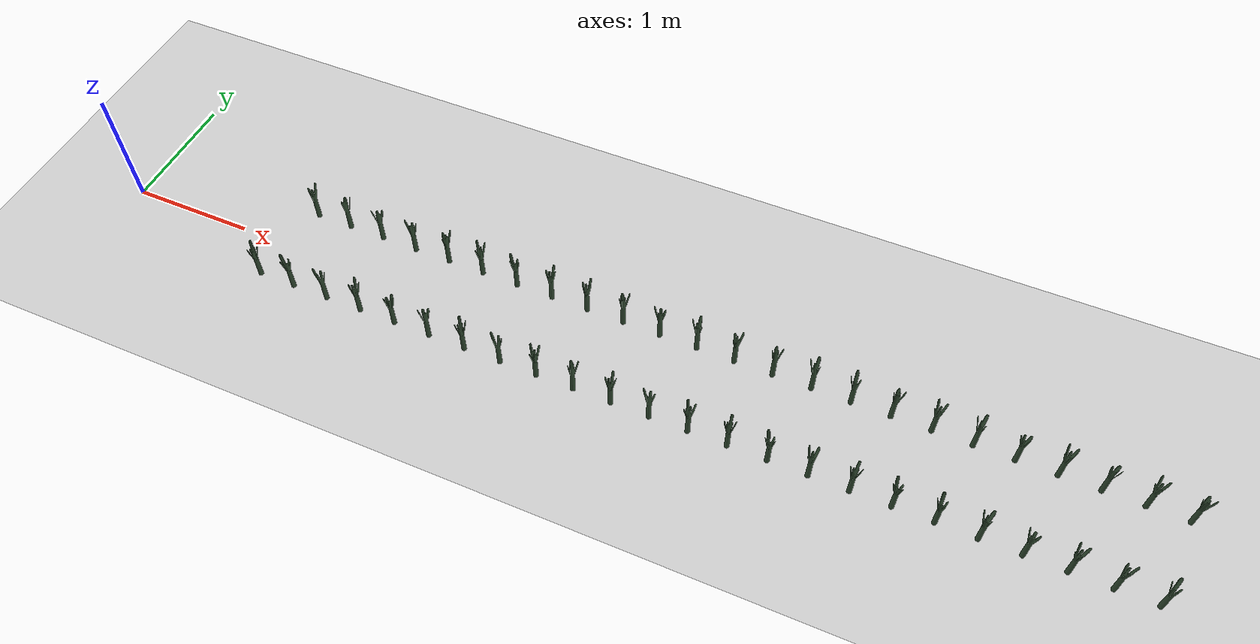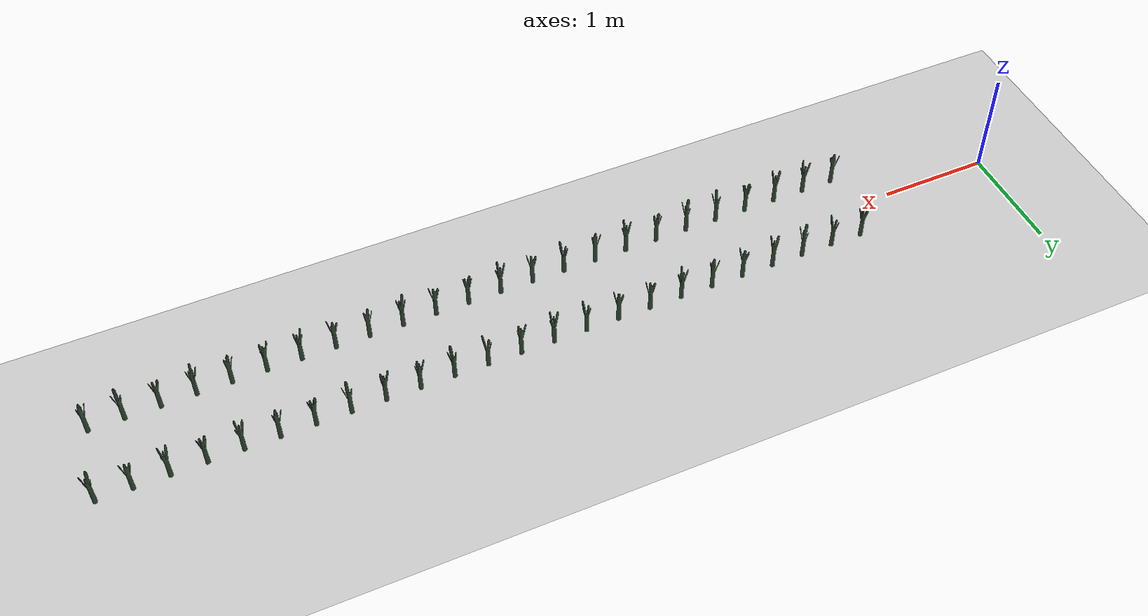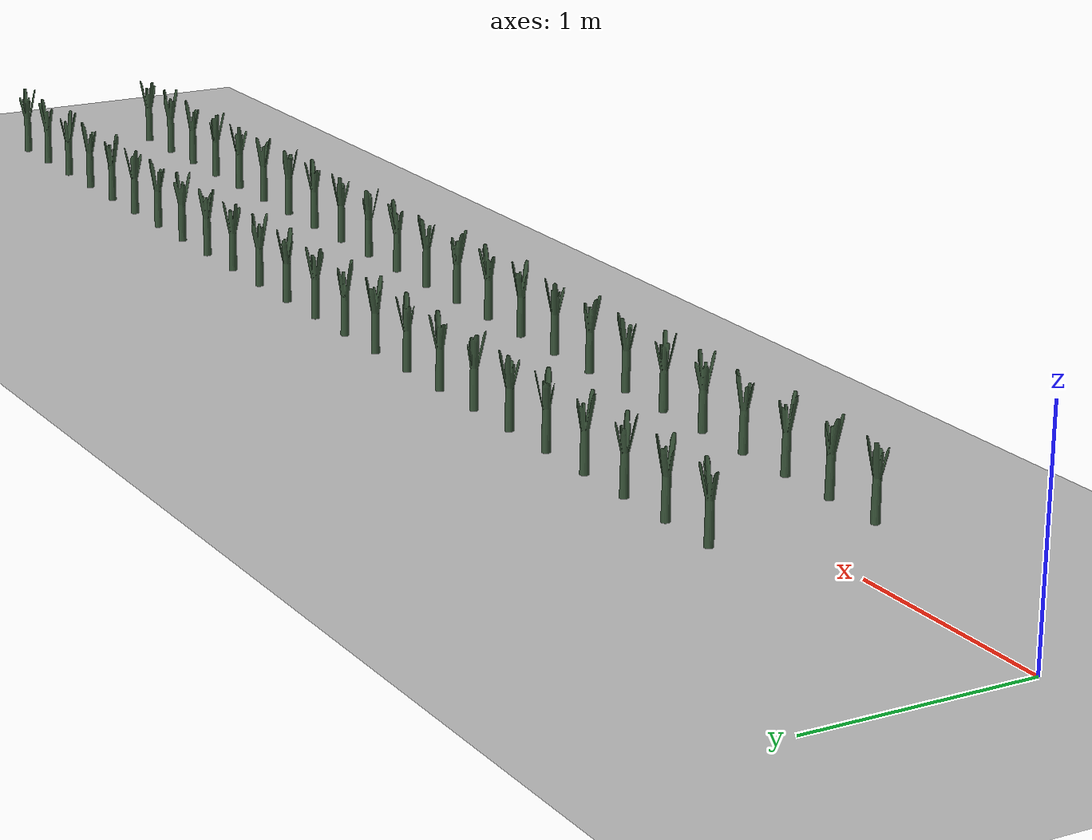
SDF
<sdf version="1.6">
 <world name="default">
  <light name="sun" type="directional">
   <pose>0 0 10 0 -0 0</pose>
   <diffuse>0.5 0.5 0.5 1</diffuse>
   <specular>0.1 0.1 0.1 1</specular>
   <attenuation>
    <range>1000</range>
    <constant>0.9</constant>
    <linear>0.01</linear>
    <quadratic>0.001</quadratic>
   </attenuation>
   <direction>0.9 0.5 -1</direction>
  </light>
  <scene><background>130 200 255 1</background><ambient>130 140 140 1</ambient></scene>
  <include><uri>model://dirt_plane</uri></include>
  <include><uri>model://Leek</uri><pose>1.500000 0.350000 0.15 0 0 -0.184193</pose><static>0</static></include>
  <include>
   <uri>model://Leek</uri>
   <pose>1.800000 0.350000 0.15 0 0 -170.812586</pose>
   <static>0</static>
  </include>
  <include><uri>model://Leek</uri><pose>2.100000 0.350000 0.15 0 0 -84.006383</pose><static>0</static></include>
  <include><uri>model://Leek</uri><pose>2.400000 0.350000 0.15 0 0 66.314938</pose><static>0</static></include>
  <include>
   <uri>model://Leek</uri>
   <pose>2.700000 0.350000 0.15 0 0 -138.902291</pose>
   <static>0</static>
  </include>
  <include><uri>model://Leek</uri><pose>3.000000 0.350000 0.15 0 0 120.205929</pose><static>0</static></include>
  <include><uri>model://Leek</uri><pose>3.300000 0.350000 0.15 0 0 -53.727761</pose><static>0</static></include>
  <include><uri>model://Leek</uri><pose>3.600000 0.350000 0.15 0 0 144.265559</pose><static>0</static></include>
  <include><uri>model://Leek</uri><pose>3.900000 0.350000 0.15 0 0 18.427161</pose><static>0</static></include>
  <include><uri>model://Leek</uri><pose>4.200000 0.350000 0.15 0 0 -95.347874</pose><static>0</static></include>
  <include><uri>model://Leek</uri><pose>4.500000 0.350000 0.15 0 0 116.529952</pose><static>0</static></include>
  <include><uri>model://Leek</uri><pose>4.800000 0.350000 0.15 0 0 32.967882</pose><static>0</static></include>
  <include>
   <uri>model://Leek</uri>
   <pose>5.100000 0.350000 0.15 0 0 -114.008231</pose>
   <static>0</static>
  </include>
  <include><uri>model://Leek</uri><pose>5.400000 0.350000 0.15 0 0 168.217596</pose><static>0</static></include>
  <include>
   <uri>model://Leek</uri>
   <pose>5.700000 0.350000 0.15 0 0 -174.460756</pose>
   <static>0</static>
  </include>
  <include><uri>model://Leek</uri><pose>6.000000 0.350000 0.15 0 0 -92.403874</pose><static>0</static></include>
  <include><uri>model://Leek</uri><pose>6.300000 0.350000 0.15 0 0 136.656752</pose><static>0</static></include>
  <include><uri>model://Leek</uri><pose>6.600000 0.350000 0.15 0 0 107.301079</pose><static>0</static></include>
  <include>
   <uri>model://Leek</uri>
   <pose>6.900000 0.350000 0.15 0 0 -136.907911</pose>
   <static>0</static>
  </include>
  <include><uri>model://Leek</uri><pose>7.200000 0.350000 0.15 0 0 60.143913</pose><static>0</static></include>
  <include><uri>model://Leek</uri><pose>7.500000 0.350000 0.15 0 0 82.192230</pose><static>0</static></include>
  <include>
   <uri>model://Leek</uri>
   <pose>7.800000 0.350000 0.15 0 0 -128.021033</pose>
   <static>0</static>
  </include>
  <include><uri>model://Leek</uri><pose>8.100000 0.350000 0.15 0 0 -24.942858</pose><static>0</static></include>
  <include><uri>model://Leek</uri><pose>8.400000 0.350000 0.15 0 0 73.560589</pose><static>0</static></include>
  <include>
   <uri>model://Leek</uri>
   <pose>1.403569 -0.350000 0.15 0 0 101.225446</pose>
   <static>0</static>
  </include>
  <include>
   <uri>model://Leek</uri>
   <pose>1.703569 -0.350000 0.15 0 0 134.929908</pose>
   <static>0</static>
  </include>
  <include>
   <uri>model://Leek</uri>
   <pose>2.003569 -0.350000 0.15 0 0 -166.229440</pose>
   <static>0</static>
  </include>
  <include>
   <uri>model://Leek</uri>
   <pose>2.303569 -0.350000 0.15 0 0 176.169816</pose>
   <static>0</static>
  </include>
  <include>
   <uri>model://Leek</uri>
   <pose>2.603569 -0.350000 0.15 0 0 167.825100</pose>
   <static>0</static>
  </include>
  <include><uri>model://Leek</uri><pose>2.903569 -0.350000 0.15 0 0 4.056344</pose><static>0</static></include>
  <include>
   <uri>model://Leek</uri>
   <pose>3.203569 -0.350000 0.15 0 0 -68.627173</pose>
   <static>0</static>
  </include>
  <include><uri>model://Leek</uri><pose>3.503569 -0.350000 0.15 0 0 40.824760</pose><static>0</static></include>
  <include>
   <uri>model://Leek</uri>
   <pose>3.803569 -0.350000 0.15 0 0 120.293432</pose>
   <static>0</static>
  </include>
  <include>
   <uri>model://Leek</uri>
   <pose>4.103569 -0.350000 0.15 0 0 -76.512626</pose>
   <static>0</static>
  </include>
  <include>
   <uri>model://Leek</uri>
   <pose>4.403569 -0.350000 0.15 0 0 100.426388</pose>
   <static>0</static>
  </include>
  <include>
   <uri>model://Leek</uri>
   <pose>4.703569 -0.350000 0.15 0 0 179.094945</pose>
   <static>0</static>
  </include>
  <include>
   <uri>model://Leek</uri>
   <pose>5.003569 -0.350000 0.15 0 0 -131.417178</pose>
   <static>0</static>
  </include>
  <include>
   <uri>model://Leek</uri>
   <pose>5.303569 -0.350000 0.15 0 0 125.656877</pose>
   <static>0</static>
  </include>
  <include>
   <uri>model://Leek</uri>
   <pose>5.603569 -0.350000 0.15 0 0 -47.837775</pose>
   <static>0</static>
  </include>
  <include>
   <uri>model://Leek</uri>
   <pose>5.903569 -0.350000 0.15 0 0 139.136516</pose>
   <static>0</static>
  </include>
  <include>
   <uri>model://Leek</uri>
   <pose>6.203569 -0.350000 0.15 0 0 138.006450</pose>
   <static>0</static>
  </include>
  <include>
   <uri>model://Leek</uri>
   <pose>6.503569 -0.350000 0.15 0 0 -66.877451</pose>
   <static>0</static>
  </include>
  <include><uri>model://Leek</uri><pose>6.803569 -0.350000 0.15 0 0 8.199970</pose><static>0</static></include>
  <include>
   <uri>model://Leek</uri>
   <pose>7.103569 -0.350000 0.15 0 0 120.457882</pose>
   <static>0</static>
  </include>
  <include>
   <uri>model://Leek</uri>
   <pose>7.403569 -0.350000 0.15 0 0 -28.495226</pose>
   <static>0</static>
  </include>
  <include>
   <uri>model://Leek</uri>
   <pose>7.703569 -0.350000 0.15 0 0 -12.127769</pose>
   <static>0</static>
  </include>
  <include>
   <uri>model://Leek</uri>
   <pose>8.003569 -0.350000 0.15 0 0 155.724787</pose>
   <static>0</static>
  </include>
  <include><uri>model://Leek</uri><pose>8.303569 -0.350000 0.15 0 0 14.077214</pose><static>0</static></include>
 </world>
</sdf>

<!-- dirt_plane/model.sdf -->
<sdf version="1.4">
<model name="dirt_plane">
  <static>true</static>
    <link name="link">
      <collision name="collision">
        <geometry>
          <plane>
            <normal>0 0 1</normal>
            <size>100 100</size>
          </plane>
        </geometry>
        <surface>
          <friction>
            <ode>
              <mu>100</mu>
              <mu2>50</mu2>
            </ode>
          </friction>
        </surface>
      </collision>
      <visual name="visual">
        <cast_shadows>false</cast_shadows>
        <geometry>
          <plane>
            <normal>0 0 1</normal>
            <size>100 100</size>
          </plane>
        </geometry>
        <material>
          <script>
            <uri>model://ground_plane/materials/scripts/my_ground_plane.material</uri>
            <uri>model://ground_plane/materials/textures</uri>
            <name>my_ground_plane/Dirt</name>
          </script>
        </material>
      </visual>
    </link>
  </model>
</sdf>

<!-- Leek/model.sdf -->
<sdf version='1.6'>
  <model name='Leek'>
    <link name='link'>
      <pose frame=''>0 0 0 0 -0 0</pose>
      <inertial>
        <mass>1</mass>
        <inertia>
          <ixx>0.145833</ixx>
          <ixy>0</ixy>
          <ixz>0</ixz>
          <iyy>0.145833</iyy>
          <iyz>0</iyz>
          <izz>0.125</izz>
        </inertia>
        <pose frame=''>0 0 0 0 -0 0</pose>
      </inertial>
      <self_collide>0</self_collide>
      <kinematic>0</kinematic>
      <gravity>1</gravity>
      <visual name='visual'>
        <geometry>
          <mesh>
            <uri>model://Leek/Poireau.dae</uri>
            <scale>1 1 1</scale>
          </mesh>
        </geometry>
        <material>
          <script>
            <name>Gazebo/Grey</name>
            <uri>file://media/materials/scripts/gazebo.material</uri>
          </script>
          <ambient>0.3 0.7 0.4 0</ambient>
          <diffuse>0.2 0.3 0.2 0</diffuse>
          <specular>0 0 0 1</specular>
          <emissive>0 0 0 1</emissive>
          <shader type='vertex'>
            <normal_map>__default__</normal_map>
          </shader>
        </material>
        <pose frame=''>0 0 -0.08 0 -0 0</pose>
        <cast_shadows>1</cast_shadows>
        <transparency>0</transparency>
      </visual>
      <collision name='collision'>
        <laser_retro>0</laser_retro>
        <max_contacts>10</max_contacts>
        <pose frame=''>0 0 0 0 -0 0</pose>
        <geometry>
          <cylinder>
            <radius>0.02</radius>
            <length>0.25</length>
          </cylinder>
        </geometry>
        <surface>
          <friction>
            <ode>
              <mu>1</mu>
              <mu2>1</mu2>
              <fdir1>0 0 0</fdir1>
              <slip1>0</slip1>
              <slip2>0</slip2>
            </ode>
            <torsional>
              <coefficient>1</coefficient>
              <patch_radius>0</patch_radius>
              <surface_radius>0</surface_radius>
              <use_patch_radius>1</use_patch_radius>
              <ode>
                <slip>0</slip>
              </ode>
            </torsional>
          </friction>
          <bounce>
            <restitution_coefficient>0</restitution_coefficient>
            <threshold>1e+06</threshold>
          </bounce>
          <contact>
            <collide_without_contact>0</collide_without_contact>
            <collide_without_contact_bitmask>1</collide_without_contact_bitmask>
            <collide_bitmask>1</collide_bitmask>
            <ode>
              <soft_cfm>0</soft_cfm>
              <soft_erp>0.2</soft_erp>
              <kp>1e+13</kp>
              <kd>1</kd>
              <max_vel>0.01</max_vel>
              <min_depth>0</min_depth>
            </ode>
            <bullet>
              <split_impulse>1</split_impulse>
              <split_impulse_penetration_threshold>-0.01</split_impulse_penetration_threshold>
              <soft_cfm>0</soft_cfm>
              <soft_erp>0.2</soft_erp>
              <kp>1e+13</kp>
              <kd>1</kd>
            </bullet>
          </contact>
        </surface>
      </collision>
    </link>
    <static>0</static>
    <allow_auto_disable>1</allow_auto_disable>
  </model>
</sdf>
